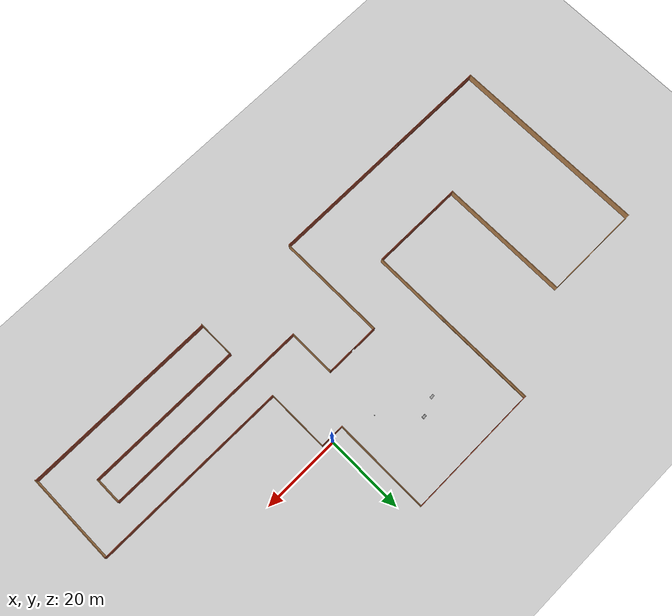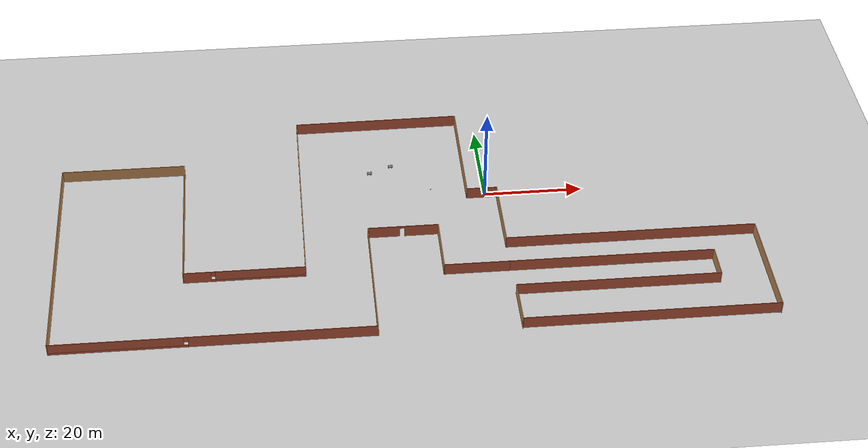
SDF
<sdf version="1.6">
 <world name="default">
  <plugin name="welcome" filename="libwelcome.so"/>
  <light name="sun" type="directional">
   <pose>0 0 10 0 -0 0</pose>
   <diffuse>0.8 0.8 0.8 1</diffuse>
   <specular>0.2 0.2 0.2 1</specular>
   <attenuation>
    <range>1000</range>
    <constant>0.9</constant>
    <linear>0.01</linear>
    <quadratic>0.001</quadratic>
   </attenuation>
   <direction>-0.5 0.1 -0.9</direction>
  </light>
  <model name="ground_plane">
   <static>1</static>
   <link name="link">
    <collision name="collision">
     <geometry><plane><normal>0 0 1</normal><size>100 100</size></plane></geometry>
     <surface>
      <contact><collide_bitmask>65535</collide_bitmask></contact>
      <friction><ode><mu>100</mu><mu2>50</mu2></ode></friction>
     </surface>
    </collision>
    <visual name="visual">
     <cast_shadows>0</cast_shadows>
     <geometry><plane><normal>0 0 1</normal><size>100 100</size></plane></geometry>
     <material>
      <script><uri>file://media/materials/scripts/gazebo.material</uri><name>Gazebo/Grey</name></script>
     </material>
    </visual>
   </link>
  </model>
  <gravity>0 0 -9.8</gravity>
  <magnetic_field>6e-06 2.3e-05 -4.2e-05</magnetic_field>
  <atmosphere type="adiabatic"/>
  <physics name="default_physics" default="0" type="ode">
   <max_step_size>0.001</max_step_size>
   <real_time_factor>1</real_time_factor>
   <real_time_update_rate>1000</real_time_update_rate>
  </physics>
  <scene><ambient>0.4 0.4 0.4 1</ambient><background>0.7 0.7 0.7 1</background><shadows>1</shadows></scene>
  <spherical_coordinates>
   <surface_model>EARTH_WGS84</surface_model>
   <latitude_deg>0</latitude_deg>
   <longitude_deg>0</longitude_deg>
   <elevation>0</elevation>
   <heading_deg>0</heading_deg>
  </spherical_coordinates>
  <model name="singlefloor">
   <pose>-17.175 -8.20607 0 0 -0 0</pose>
   <link name="Wall_0">
    <collision name="Wall_0_Collision">
     <geometry><box><size>6.25 0.15 2.5</size></box></geometry>
     <pose>0 0 1.25 0 -0 0</pose>
    </collision>
    <visual name="Wall_0_Visual">
     <pose>0 0 1.25 0 -0 0</pose>
     <geometry><box><size>6.25 0.15 2.5</size></box></geometry>
     <material>
      <script><uri>file://media/materials/scripts/gazebo.material</uri><name>Gazebo/Bricks</name></script>
      <ambient>0.921569 0.807843 0.615686 1</ambient>
     </material>
     <meta><layer>0</layer></meta>
    </visual>
    <pose>16.3992 7.27037 0 0 -0 0</pose>
   </link>
   <link name="Wall_1">
    <collision name="Wall_1_Collision">
     <geometry><box><size>16 0.15 2.5</size></box></geometry>
     <pose>0 0 1.25 0 -0 0</pose>
    </collision>
    <visual name="Wall_1_Visual">
     <pose>0 0 1.25 0 -0 0</pose>
     <geometry><box><size>16 0.15 2.5</size></box></geometry>
     <material>
      <script><uri>file://media/materials/scripts/gazebo.material</uri><name>Gazebo/Wood</name></script>
      <ambient>0.921569 0.807843 0.615686 1</ambient>
     </material>
     <meta><layer>0</layer></meta>
    </visual>
    <pose>19.4621 -0.658928 0 0 0 -1.56917</pose>
   </link>
   <link name="Wall_10">
    <collision name="Wall_10_Collision">
     <geometry><box><size>12.25 0.15 2.5</size></box></geometry>
     <pose>0 0 1.25 0 -0 0</pose>
    </collision>
    <visual name="Wall_10_Visual">
     <pose>0 0 1.25 0 -0 0</pose>
     <geometry><box><size>12.25 0.15 2.5</size></box></geometry>
     <material>
      <script><uri>file://media/materials/scripts/gazebo.material</uri><name>Gazebo/Wood</name></script>
      <ambient>0.921569 0.807843 0.615686 1</ambient>
     </material>
     <meta><layer>0</layer></meta>
    </visual>
    <pose>6.375 -9.43393 0 0 -0 1.5708</pose>
   </link>
   <link name="Wall_11">
    <pose>-0.674999 -3.38393 0 0 -0 3.14159</pose>
    <visual name="Wall_11_Visual_0">
     <pose>-3.67697 0 1.25 0 -0 0</pose>
     <geometry><box><size>6.89605 0.15 2.5</size></box></geometry>
     <material>
      <script><uri>file://media/materials/scripts/gazebo.material</uri><name>Gazebo/Bricks</name></script>
      <ambient>0.921569 0.807843 0.615686 1</ambient>
     </material>
     <meta><layer>0</layer></meta>
    </visual>
    <collision name="Wall_11_Collision_0">
     <geometry><box><size>6.89605 0.15 2.5</size></box></geometry>
     <pose>-3.67697 0 1.25 0 -0 0</pose>
    </collision>
    <visual name="Wall_11_Visual_1">
     <pose>3.89803 0 1.25 0 -0 0</pose>
     <geometry><box><size>6.45395 0.15 2.5</size></box></geometry>
     <material>
      <script><uri>file://media/materials/scripts/gazebo.material</uri><name>Gazebo/Bricks</name></script>
      <ambient>0.921569 0.807843 0.615686 1</ambient>
     </material>
     <meta><layer>0</layer></meta>
    </visual>
    <collision name="Wall_11_Collision_1">
     <geometry><box><size>6.45395 0.15 2.5</size></box></geometry>
     <pose>3.89803 0 1.25 0 -0 0</pose>
    </collision>
    <visual name="Wall_11_Visual_2">
     <pose>0.221052 0 2.25 0 -0 0</pose>
     <geometry><box><size>0.9 0.15 0.5</size></box></geometry>
     <material>
      <script><uri>file://media/materials/scripts/gazebo.material</uri><name>Gazebo/Bricks</name></script>
      <ambient>0.921569 0.807843 0.615686 1</ambient>
     </material>
     <meta><layer>0</layer></meta>
    </visual>
    <collision name="Wall_11_Collision_2">
     <geometry><box><size>0.9 0.15 0.5</size></box></geometry>
     <pose>0.221052 0 2.25 0 -0 0</pose>
    </collision>
   </link>
   <link name="Wall_12">
    <collision name="Wall_12_Collision">
     <geometry><box><size>28.25 0.15 2.5</size></box></geometry>
     <pose>0 0 1.25 0 -0 0</pose>
    </collision>
    <visual name="Wall_12_Visual">
     <pose>0 0 1.25 0 -0 0</pose>
     <geometry><box><size>28.25 0.15 2.5</size></box></geometry>
     <material>
      <script><uri>file://media/materials/scripts/gazebo.material</uri><name>Gazebo/Wood</name></script>
      <ambient>0.921569 0.807843 0.615686 1</ambient>
     </material>
     <meta><layer>0</layer></meta>
    </visual>
    <pose>-7.725 -17.4339 0 0 0 -1.5708</pose>
   </link>
   <link name="Wall_13">
    <pose>-38.65 -31.4839 0 0 -0 3.14159</pose>
    <visual name="Wall_13_Visual_0">
     <pose>-13.1366 0 1.25 0 -0 0</pose>
     <geometry><box><size>35.7269 0.15 2.5</size></box></geometry>
     <material>
      <script><uri>file://media/materials/scripts/gazebo.material</uri><name>Gazebo/Bricks</name></script>
      <ambient>0.921569 0.807843 0.615686 1</ambient>
     </material>
     <meta><layer>0</layer></meta>
    </visual>
    <collision name="Wall_13_Collision_0">
     <geometry><box><size>35.7269 0.15 2.5</size></box></geometry>
     <pose>-13.1366 0 1.25 0 -0 0</pose>
    </collision>
    <visual name="Wall_13_Visual_1">
     <pose>17.8634 0 0.25 0 -0 0</pose>
     <geometry><box><size>26.2731 0.15 0.5</size></box></geometry>
     <material>
      <script><uri>file://media/materials/scripts/gazebo.material</uri><name>Gazebo/Bricks</name></script>
      <ambient>0.921569 0.807843 0.615686 1</ambient>
     </material>
     <meta><layer>0</layer></meta>
    </visual>
    <collision name="Wall_13_Collision_1">
     <geometry><box><size>26.2731 0.15 0.5</size></box></geometry>
     <pose>17.8634 0 0.25 0 -0 0</pose>
    </collision>
    <visual name="Wall_13_Visual_2">
     <pose>18.2634 0 1.5 0 -0 0</pose>
     <geometry><box><size>25.4731 0.15 2</size></box></geometry>
     <material>
      <script><uri>file://media/materials/scripts/gazebo.material</uri><name>Gazebo/Bricks</name></script>
      <ambient>0.921569 0.807843 0.615686 1</ambient>
     </material>
     <meta><layer>0</layer></meta>
    </visual>
    <collision name="Wall_13_Collision_2">
     <geometry><box><size>25.4731 0.15 2</size></box></geometry>
     <pose>18.2634 0 1.5 0 -0 0</pose>
    </collision>
    <visual name="Wall_13_Visual_3">
     <pose>5.12688 0 1.9 0 -0 0</pose>
     <geometry><box><size>0.8 0.15 1.2</size></box></geometry>
     <material>
      <script><uri>file://media/materials/scripts/gazebo.material</uri><name>Gazebo/Bricks</name></script>
      <ambient>0.921569 0.807843 0.615686 1</ambient>
     </material>
     <meta><layer>0</layer></meta>
    </visual>
    <collision name="Wall_13_Collision_3">
     <geometry><box><size>0.8 0.15 1.2</size></box></geometry>
     <pose>5.12688 0 1.9 0 -0 0</pose>
    </collision>
   </link>
   <link name="Wall_14">
    <collision name="Wall_14_Collision">
     <geometry><box><size>51.25 0.15 2.5</size></box></geometry>
     <pose>0 0 1.25 0 -0 0</pose>
    </collision>
    <visual name="Wall_14_Visual">
     <pose>0 0 1.25 0 -0 0</pose>
     <geometry><box><size>51.25 0.15 2.5</size></box></geometry>
     <material>
      <script><uri>file://media/materials/scripts/gazebo.material</uri><name>Gazebo/Wood</name></script>
      <ambient>0.921569 0.807843 0.615686 1</ambient>
     </material>
     <meta><layer>0</layer></meta>
    </visual>
    <pose>-69.575 -5.93393 0 0 -0 1.5708</pose>
   </link>
   <link name="Wall_15">
    <collision name="Wall_15_Collision">
     <geometry><box><size>25.25 0.15 2.5</size></box></geometry>
     <pose>0 0 1.25 0 -0 0</pose>
    </collision>
    <visual name="Wall_15_Visual">
     <pose>0 0 1.25 0 -0 0</pose>
     <geometry><box><size>25.25 0.15 2.5</size></box></geometry>
     <material>
      <script><uri>file://media/materials/scripts/gazebo.material</uri><name>Gazebo/Wood</name></script>
      <ambient>0.921569 0.807843 0.615686 1</ambient>
     </material>
     <meta><layer>0</layer></meta>
    </visual>
    <pose>-57.025 19.6161 0 0 -0 0</pose>
   </link>
   <link name="Wall_16">
    <collision name="Wall_16_Collision">
     <geometry><box><size>33.5 0.15 2.5</size></box></geometry>
     <pose>0 0 1.25 0 -0 0</pose>
    </collision>
    <visual name="Wall_16_Visual">
     <pose>0 0 1.25 0 -0 0</pose>
     <geometry><box><size>33.5 0.15 2.5</size></box></geometry>
     <material>
      <script><uri>file://media/materials/scripts/gazebo.material</uri><name>Gazebo/Wood</name></script>
      <ambient>0.921569 0.807843 0.615686 1</ambient>
     </material>
     <meta><layer>0</layer></meta>
    </visual>
    <pose>-44.475 2.94107 0 0 0 -1.5708</pose>
   </link>
   <link name="Wall_17">
    <pose>-32.55 -13.7339 0 0 -0 0</pose>
    <visual name="Wall_17_Visual_0">
     <pose>-9.24015 0 1.25 0 -0 0</pose>
     <geometry><box><size>5.5197 0.15 2.5</size></box></geometry>
     <material>
      <script><uri>file://media/materials/scripts/gazebo.material</uri><name>Gazebo/Bricks</name></script>
      <ambient>0.921569 0.807843 0.615686 1</ambient>
     </material>
     <meta><layer>0</layer></meta>
    </visual>
    <collision name="Wall_17_Collision_0">
     <geometry><box><size>5.5197 0.15 2.5</size></box></geometry>
     <pose>-9.24015 0 1.25 0 -0 0</pose>
    </collision>
    <visual name="Wall_17_Visual_1">
     <pose>2.75985 0 0.25 0 -0 0</pose>
     <geometry><box><size>18.4803 0.15 0.5</size></box></geometry>
     <material>
      <script><uri>file://media/materials/scripts/gazebo.material</uri><name>Gazebo/Bricks</name></script>
      <ambient>0.921569 0.807843 0.615686 1</ambient>
     </material>
     <meta><layer>0</layer></meta>
    </visual>
    <collision name="Wall_17_Collision_1">
     <geometry><box><size>18.4803 0.15 0.5</size></box></geometry>
     <pose>2.75985 0 0.25 0 -0 0</pose>
    </collision>
    <visual name="Wall_17_Visual_2">
     <pose>3.15985 0 1.5 0 -0 0</pose>
     <geometry><box><size>17.6803 0.15 2</size></box></geometry>
     <material>
      <script><uri>file://media/materials/scripts/gazebo.material</uri><name>Gazebo/Bricks</name></script>
      <ambient>0.921569 0.807843 0.615686 1</ambient>
     </material>
     <meta><layer>0</layer></meta>
    </visual>
    <collision name="Wall_17_Collision_2">
     <geometry><box><size>17.6803 0.15 2</size></box></geometry>
     <pose>3.15985 0 1.5 0 -0 0</pose>
    </collision>
    <visual name="Wall_17_Visual_3">
     <pose>-6.0803 0 1.9 0 -0 0</pose>
     <geometry><box><size>0.8 0.15 1.2</size></box></geometry>
     <material>
      <script><uri>file://media/materials/scripts/gazebo.material</uri><name>Gazebo/Bricks</name></script>
      <ambient>0.921569 0.807843 0.615686 1</ambient>
     </material>
     <meta><layer>0</layer></meta>
    </visual>
    <collision name="Wall_17_Collision_3">
     <geometry><box><size>0.8 0.15 1.2</size></box></geometry>
     <pose>-6.0803 0 1.9 0 -0 0</pose>
    </collision>
   </link>
   <link name="Wall_18">
    <pose>-20.625 8.94107 0 0 -0 1.5708</pose>
    <visual name="Wall_18_Visual_0">
     <pose>-12.8056 0 1.25 0 -0 0</pose>
     <geometry><box><size>19.8888 0.15 2.5</size></box></geometry>
     <material>
      <script><uri>file://media/materials/scripts/gazebo.material</uri><name>Gazebo/Wood</name></script>
      <ambient>0.921569 0.807843 0.615686 1</ambient>
     </material>
     <meta><layer>0</layer></meta>
    </visual>
    <collision name="Wall_18_Collision_0">
     <geometry><box><size>19.8888 0.15 2.5</size></box></geometry>
     <pose>-12.8056 0 1.25 0 -0 0</pose>
    </collision>
    <visual name="Wall_18_Visual_1">
     <pose>9.94438 0 0.25 0 -0 0</pose>
     <geometry><box><size>25.6112 0.15 0.5</size></box></geometry>
     <material>
      <script><uri>file://media/materials/scripts/gazebo.material</uri><name>Gazebo/Wood</name></script>
      <ambient>0.921569 0.807843 0.615686 1</ambient>
     </material>
     <meta><layer>0</layer></meta>
    </visual>
    <collision name="Wall_18_Collision_1">
     <geometry><box><size>25.6112 0.15 0.5</size></box></geometry>
     <pose>9.94438 0 0.25 0 -0 0</pose>
    </collision>
    <visual name="Wall_18_Visual_2">
     <pose>10.3444 0 1.5 0 -0 0</pose>
     <geometry><box><size>24.8112 0.15 2</size></box></geometry>
     <material>
      <script><uri>file://media/materials/scripts/gazebo.material</uri><name>Gazebo/Wood</name></script>
      <ambient>0.921569 0.807843 0.615686 1</ambient>
     </material>
     <meta><layer>0</layer></meta>
    </visual>
    <collision name="Wall_18_Collision_2">
     <geometry><box><size>24.8112 0.15 2</size></box></geometry>
     <pose>10.3444 0 1.5 0 -0 0</pose>
    </collision>
    <visual name="Wall_18_Visual_3">
     <pose>-2.46123 0 1.9 0 -0 0</pose>
     <geometry><box><size>0.8 0.15 1.2</size></box></geometry>
     <material>
      <script><uri>file://media/materials/scripts/gazebo.material</uri><name>Gazebo/Wood</name></script>
      <ambient>0.921569 0.807843 0.615686 1</ambient>
     </material>
     <meta><layer>0</layer></meta>
    </visual>
    <collision name="Wall_18_Collision_3">
     <geometry><box><size>0.8 0.15 1.2</size></box></geometry>
     <pose>-2.46123 0 1.9 0 -0 0</pose>
    </collision>
   </link>
   <link name="Wall_19">
    <collision name="Wall_19_Collision">
     <geometry><box><size>34.0968 0.15 2.5</size></box></geometry>
     <pose>0 0 1.25 0 -0 0</pose>
    </collision>
    <visual name="Wall_19_Visual">
     <pose>0 0 1.25 0 -0 0</pose>
     <geometry><box><size>34.0968 0.15 2.5</size></box></geometry>
     <material>
      <script><uri>file://media/materials/scripts/gazebo.material</uri><name>Gazebo/Bricks</name></script>
      <ambient>0.921569 0.807843 0.615686 1</ambient>
     </material>
     <meta><layer>0</layer></meta>
    </visual>
    <pose>-3.65205 31.7412 0 0 -0 0.007373</pose>
   </link>
   <link name="Wall_2">
    <collision name="Wall_2_Collision">
     <geometry><box><size>50.25 0.15 2.5</size></box></geometry>
     <pose>0 0 1.25 0 -0 0</pose>
    </collision>
    <visual name="Wall_2_Visual">
     <pose>0 0 1.25 0 -0 0</pose>
     <geometry><box><size>50.25 0.15 2.5</size></box></geometry>
     <material>
      <script><uri>file://media/materials/scripts/gazebo.material</uri><name>Gazebo/Bricks</name></script>
      <ambient>0.921569 0.807843 0.615686 1</ambient>
     </material>
     <meta><layer>0</layer></meta>
    </visual>
    <pose>44.525 -8.58393 0 0 -0 0</pose>
   </link>
   <link name="Wall_20">
    <collision name="Wall_20_Collision">
     <geometry><box><size>24.75 0.15 2.5</size></box></geometry>
     <pose>0 0 1.25 0 -0 0</pose>
    </collision>
    <visual name="Wall_20_Visual">
     <pose>0 0 1.25 0 -0 0</pose>
     <geometry><box><size>24.75 0.15 2.5</size></box></geometry>
     <material>
      <script><uri>file://media/materials/scripts/gazebo.material</uri><name>Gazebo/Wood</name></script>
      <ambient>0.921569 0.807843 0.615686 1</ambient>
     </material>
     <meta><layer>0</layer></meta>
    </visual>
    <pose>13.3295 19.5664 0 0 0 -1.5708</pose>
   </link>
   <link name="Wall_3">
    <collision name="Wall_3_Collision">
     <geometry><box><size>23.433 0.15 2.5</size></box></geometry>
     <pose>0 0 1.25 0 -0 0</pose>
    </collision>
    <visual name="Wall_3_Visual">
     <pose>0 0 1.25 0 -0 0</pose>
     <geometry><box><size>23.433 0.15 2.5</size></box></geometry>
     <material>
      <script><uri>file://media/materials/scripts/gazebo.material</uri><name>Gazebo/Wood</name></script>
      <ambient>0.921569 0.807843 0.615686 1</ambient>
     </material>
     <meta><layer>0</layer></meta>
    </visual>
    <pose>69.575 -20.2254 0 0 0 -1.5708</pose>
   </link>
   <link name="Wall_4">
    <collision name="Wall_4_Collision">
     <geometry><box><size>50 0.15 2.5</size></box></geometry>
     <pose>0 0 1.25 0 -0 0</pose>
    </collision>
    <visual name="Wall_4_Visual">
     <pose>0 0 1.25 0 -0 0</pose>
     <geometry><box><size>50 0.15 2.5</size></box></geometry>
     <material>
      <script><uri>file://media/materials/scripts/gazebo.material</uri><name>Gazebo/Bricks</name></script>
      <ambient>0.921569 0.807843 0.615686 1</ambient>
     </material>
     <meta><layer>0</layer></meta>
    </visual>
    <pose>44.65 -31.6798 0 0 -0 3.14159</pose>
   </link>
   <link name="Wall_5">
    <collision name="Wall_5_Collision">
     <geometry><box><size>9.68298 0.15 2.5</size></box></geometry>
     <pose>0 0 1.25 0 -0 0</pose>
    </collision>
    <visual name="Wall_5_Visual">
     <pose>0 0 1.25 0 -0 0</pose>
     <geometry><box><size>9.68298 0.15 2.5</size></box></geometry>
     <material>
      <script><uri>file://media/materials/scripts/gazebo.material</uri><name>Gazebo/Wood</name></script>
      <ambient>0.921569 0.807843 0.615686 1</ambient>
     </material>
     <meta><layer>0</layer></meta>
    </visual>
    <pose>19.725 -27.1004 0 0 -0 1.5708</pose>
   </link>
   <link name="Wall_6">
    <collision name="Wall_6_Collision">
     <geometry><box><size>40.25 0.15 2.5</size></box></geometry>
     <pose>0 0 1.25 0 -0 0</pose>
    </collision>
    <visual name="Wall_6_Visual">
     <pose>0 0 1.25 0 -0 0</pose>
     <geometry><box><size>40.25 0.15 2.5</size></box></geometry>
     <material>
      <script><uri>file://media/materials/scripts/gazebo.material</uri><name>Gazebo/Bricks</name></script>
      <ambient>0.921569 0.807843 0.615686 1</ambient>
     </material>
     <meta><layer>0</layer></meta>
    </visual>
    <pose>39.775 -22.3339 0 0 -0 0</pose>
   </link>
   <link name="Wall_7">
    <collision name="Wall_7_Collision">
     <geometry><box><size>7 0.15 2.5</size></box></geometry>
     <pose>0 0 1.25 0 -0 0</pose>
    </collision>
    <visual name="Wall_7_Visual">
     <pose>0 0 1.25 0 -0 0</pose>
     <geometry><box><size>7 0.15 2.5</size></box></geometry>
     <material>
      <script><uri>file://media/materials/scripts/gazebo.material</uri><name>Gazebo/Wood</name></script>
      <ambient>0.921569 0.807843 0.615686 1</ambient>
     </material>
     <meta><layer>0</layer></meta>
    </visual>
    <pose>59.825 -18.9089 0 0 -0 1.5708</pose>
   </link>
   <link name="Wall_8">
    <collision name="Wall_8_Collision">
     <geometry><box><size>40.75 0.15 2.5</size></box></geometry>
     <pose>0 0 1.25 0 -0 0</pose>
    </collision>
    <visual name="Wall_8_Visual">
     <pose>0 0 1.25 0 -0 0</pose>
     <geometry><box><size>40.75 0.15 2.5</size></box></geometry>
     <material>
      <script><uri>file://media/materials/scripts/gazebo.material</uri><name>Gazebo/Bricks</name></script>
      <ambient>0.921569 0.807843 0.615686 1</ambient>
     </material>
     <meta><layer>0</layer></meta>
    </visual>
    <pose>39.525 -15.4839 0 0 -0 3.14159</pose>
   </link>
   <link name="Wall_9">
    <collision name="Wall_9_Collision">
     <geometry><box><size>13 0.15 2.5</size></box></geometry>
     <pose>0 0 1.25 0 -0 0</pose>
    </collision>
    <visual name="Wall_9_Visual">
     <pose>0 0 1.25 0 -0 0</pose>
     <geometry><box><size>13 0.15 2.5</size></box></geometry>
     <material>
      <script><uri>file://media/materials/scripts/gazebo.material</uri><name>Gazebo/Bricks</name></script>
      <ambient>0.921569 0.807843 0.615686 1</ambient>
     </material>
     <meta><layer>0</layer></meta>
    </visual>
    <pose>12.8 -15.4839 0 0 -0 3.14159</pose>
   </link>
   <static>1</static>
  </model>
  <model name="robot">
   <link name="link_0">
    <pose>-1e-06 0.020008 0 0 -0 0</pose>
    <inertial>
     <mass>1</mass>
     <inertia>
      <ixx>0.166667</ixx>
      <ixy>0</ixy>
      <ixz>0</ixz>
      <iyy>0.166667</iyy>
      <iyz>0</iyz>
      <izz>0.166667</izz>
     </inertia>
    </inertial>
    <visual name="visual">
     <geometry><box><size>1 0.5 0.2</size></box></geometry>
     <material>
      <lighting>1</lighting>
      <script><uri>file://media/materials/scripts/gazebo.material</uri><name>Gazebo/Grey</name></script>
      <shader type="pixel"><normal_map>__default__</normal_map></shader>
      <ambient>0.3 0.3 0.3 1</ambient>
      <diffuse>0.7 0.7 0.7 1</diffuse>
      <specular>0.01 0.01 0.01 1</specular>
      <emissive>0 0 0 1</emissive>
     </material>
    </visual>
    <collision name="collision">
     <geometry><box><size>1 0.5 0.2</size></box></geometry>
     <surface>
      <friction>
       <ode><mu>1</mu><mu2>1</mu2><fdir1>0 0 0</fdir1><slip1>0</slip1><slip2>0</slip2></ode>
       <torsional>
        <coefficient>1</coefficient>
        <patch_radius>0</patch_radius>
        <surface_radius>0</surface_radius>
        <use_patch_radius>1</use_patch_radius>
        <ode><slip>0</slip></ode>
       </torsional>
      </friction>
      <bounce><restitution_coefficient>0</restitution_coefficient><threshold>1e+06</threshold></bounce>
      <contact>
       <collide_without_contact>0</collide_without_contact>
       <collide_without_contact_bitmask>1</collide_without_contact_bitmask>
       <collide_bitmask>1</collide_bitmask>
       <ode>
        <soft_cfm>0</soft_cfm>
        <soft_erp>0.2</soft_erp>
        <kp>1e+13</kp>
        <kd>1</kd>
        <max_vel>0.01</max_vel>
        <min_depth>0</min_depth>
       </ode>
       <bullet>
        <split_impulse>1</split_impulse>
        <split_impulse_penetration_threshold>-0.01</split_impulse_penetration_threshold>
        <soft_cfm>0</soft_cfm>
        <soft_erp>0.2</soft_erp>
        <kp>1e+13</kp>
        <kd>1</kd>
       </bullet>
      </contact>
     </surface>
    </collision>
   </link>
   <link name="link_1">
    <pose>-0.3 -0.280011 0 1.5707 -0 0</pose>
    <inertial>
     <mass>1</mass>
     <inertia><ixx>0.145833</ixx><ixy>0</ixy><ixz>0</ixz><iyy>0.145833</iyy><iyz>0</iyz><izz>0.125</izz></inertia>
    </inertial>
    <visual name="visual">
     <geometry><cylinder><radius>0.2</radius><length>0.1</length></cylinder></geometry>
     <material>
      <lighting>1</lighting>
      <script><uri>file://media/materials/scripts/gazebo.material</uri><name>Gazebo/Grey</name></script>
      <shader type="pixel"><normal_map>__default__</normal_map></shader>
      <ambient>0.3 0.3 0.3 1</ambient>
      <diffuse>0.7 0.7 0.7 1</diffuse>
      <specular>0.01 0.01 0.01 1</specular>
      <emissive>0 0 0 1</emissive>
     </material>
    </visual>
    <collision name="collision">
     <geometry><cylinder><radius>0.2</radius><length>0.1</length></cylinder></geometry>
     <surface>
      <friction>
       <ode><mu>1</mu><mu2>1</mu2><fdir1>0 0 0</fdir1><slip1>0</slip1><slip2>0</slip2></ode>
       <torsional>
        <coefficient>1</coefficient>
        <patch_radius>0</patch_radius>
        <surface_radius>0</surface_radius>
        <use_patch_radius>1</use_patch_radius>
        <ode><slip>0</slip></ode>
       </torsional>
      </friction>
      <bounce><restitution_coefficient>0</restitution_coefficient><threshold>1e+06</threshold></bounce>
      <contact>
       <collide_without_contact>0</collide_without_contact>
       <collide_without_contact_bitmask>1</collide_without_contact_bitmask>
       <collide_bitmask>1</collide_bitmask>
       <ode>
        <soft_cfm>0</soft_cfm>
        <soft_erp>0.2</soft_erp>
        <kp>1e+13</kp>
        <kd>1</kd>
        <max_vel>0.01</max_vel>
        <min_depth>0</min_depth>
       </ode>
       <bullet>
        <split_impulse>1</split_impulse>
        <split_impulse_penetration_threshold>-0.01</split_impulse_penetration_threshold>
        <soft_cfm>0</soft_cfm>
        <soft_erp>0.2</soft_erp>
        <kp>1e+13</kp>
        <kd>1</kd>
       </bullet>
      </contact>
     </surface>
    </collision>
   </link>
   <link name="link_1_clone">
    <pose>-0.3 0.219989 0 1.5707 -0 0</pose>
    <inertial>
     <mass>1</mass>
     <inertia><ixx>0.145833</ixx><ixy>0</ixy><ixz>0</ixz><iyy>0.145833</iyy><iyz>0</iyz><izz>0.125</izz></inertia>
    </inertial>
    <visual name="visual">
     <geometry><cylinder><radius>0.2</radius><length>0.1</length></cylinder></geometry>
     <material>
      <lighting>1</lighting>
      <script><uri>file://media/materials/scripts/gazebo.material</uri><name>Gazebo/Grey</name></script>
      <shader type="pixel"><normal_map>__default__</normal_map></shader>
      <ambient>0.3 0.3 0.3 1</ambient>
      <diffuse>0.7 0.7 0.7 1</diffuse>
      <specular>0.01 0.01 0.01 1</specular>
      <emissive>0 0 0 1</emissive>
     </material>
    </visual>
    <collision name="collision">
     <geometry><cylinder><radius>0.2</radius><length>0.1</length></cylinder></geometry>
     <surface>
      <friction>
       <ode><mu>1</mu><mu2>1</mu2><fdir1>0 0 0</fdir1><slip1>0</slip1><slip2>0</slip2></ode>
       <torsional>
        <coefficient>1</coefficient>
        <patch_radius>0</patch_radius>
        <surface_radius>0</surface_radius>
        <use_patch_radius>1</use_patch_radius>
        <ode><slip>0</slip></ode>
       </torsional>
      </friction>
      <bounce><restitution_coefficient>0</restitution_coefficient><threshold>1e+06</threshold></bounce>
      <contact>
       <collide_without_contact>0</collide_without_contact>
       <collide_without_contact_bitmask>1</collide_without_contact_bitmask>
       <collide_bitmask>1</collide_bitmask>
       <ode>
        <soft_cfm>0</soft_cfm>
        <soft_erp>0.2</soft_erp>
        <kp>1e+13</kp>
        <kd>1</kd>
        <max_vel>0.01</max_vel>
        <min_depth>0</min_depth>
       </ode>
       <bullet>
        <split_impulse>1</split_impulse>
        <split_impulse_penetration_threshold>-0.01</split_impulse_penetration_threshold>
        <soft_cfm>0</soft_cfm>
        <soft_erp>0.2</soft_erp>
        <kp>1e+13</kp>
        <kd>1</kd>
       </bullet>
      </contact>
     </surface>
    </collision>
   </link>
   <link name="link_1_clone_0">
    <pose>0.299998 -0.280011 0 1.5707 -0 0</pose>
    <inertial>
     <mass>1</mass>
     <inertia><ixx>0.145833</ixx><ixy>0</ixy><ixz>0</ixz><iyy>0.145833</iyy><iyz>0</iyz><izz>0.125</izz></inertia>
    </inertial>
    <visual name="visual">
     <geometry><cylinder><radius>0.2</radius><length>0.1</length></cylinder></geometry>
     <material>
      <lighting>1</lighting>
      <script><uri>file://media/materials/scripts/gazebo.material</uri><name>Gazebo/Grey</name></script>
      <shader type="pixel"><normal_map>__default__</normal_map></shader>
      <ambient>0.3 0.3 0.3 1</ambient>
      <diffuse>0.7 0.7 0.7 1</diffuse>
      <specular>0.01 0.01 0.01 1</specular>
      <emissive>0 0 0 1</emissive>
     </material>
    </visual>
    <collision name="collision">
     <geometry><cylinder><radius>0.2</radius><length>0.1</length></cylinder></geometry>
     <surface>
      <friction>
       <ode><mu>1</mu><mu2>1</mu2><fdir1>0 0 0</fdir1><slip1>0</slip1><slip2>0</slip2></ode>
       <torsional>
        <coefficient>1</coefficient>
        <patch_radius>0</patch_radius>
        <surface_radius>0</surface_radius>
        <use_patch_radius>1</use_patch_radius>
        <ode><slip>0</slip></ode>
       </torsional>
      </friction>
      <bounce><restitution_coefficient>0</restitution_coefficient><threshold>1e+06</threshold></bounce>
      <contact>
       <collide_without_contact>0</collide_without_contact>
       <collide_without_contact_bitmask>1</collide_without_contact_bitmask>
       <collide_bitmask>1</collide_bitmask>
       <ode>
        <soft_cfm>0</soft_cfm>
        <soft_erp>0.2</soft_erp>
        <kp>1e+13</kp>
        <kd>1</kd>
        <max_vel>0.01</max_vel>
        <min_depth>0</min_depth>
       </ode>
       <bullet>
        <split_impulse>1</split_impulse>
        <split_impulse_penetration_threshold>-0.01</split_impulse_penetration_threshold>
        <soft_cfm>0</soft_cfm>
        <soft_erp>0.2</soft_erp>
        <kp>1e+13</kp>
        <kd>1</kd>
       </bullet>
      </contact>
     </surface>
    </collision>
   </link>
   <link name="link_1_clone_1">
    <pose>0.299998 0.320027 0 1.5707 -0 0</pose>
    <inertial>
     <mass>1</mass>
     <inertia><ixx>0.145833</ixx><ixy>0</ixy><ixz>0</ixz><iyy>0.145833</iyy><iyz>0</iyz><izz>0.125</izz></inertia>
    </inertial>
    <visual name="visual">
     <geometry><cylinder><radius>0.2</radius><length>0.1</length></cylinder></geometry>
     <material>
      <lighting>1</lighting>
      <script><uri>file://media/materials/scripts/gazebo.material</uri><name>Gazebo/Grey</name></script>
      <shader type="pixel"><normal_map>__default__</normal_map></shader>
      <ambient>0.3 0.3 0.3 1</ambient>
      <diffuse>0.7 0.7 0.7 1</diffuse>
      <specular>0.01 0.01 0.01 1</specular>
      <emissive>0 0 0 1</emissive>
     </material>
    </visual>
    <collision name="collision">
     <geometry><cylinder><radius>0.2</radius><length>0.1</length></cylinder></geometry>
     <surface>
      <friction>
       <ode><mu>1</mu><mu2>1</mu2><fdir1>0 0 0</fdir1><slip1>0</slip1><slip2>0</slip2></ode>
       <torsional>
        <coefficient>1</coefficient>
        <patch_radius>0</patch_radius>
        <surface_radius>0</surface_radius>
        <use_patch_radius>1</use_patch_radius>
        <ode><slip>0</slip></ode>
       </torsional>
      </friction>
      <bounce><restitution_coefficient>0</restitution_coefficient><threshold>1e+06</threshold></bounce>
      <contact>
       <collide_without_contact>0</collide_without_contact>
       <collide_without_contact_bitmask>1</collide_without_contact_bitmask>
       <collide_bitmask>1</collide_bitmask>
       <ode>
        <soft_cfm>0</soft_cfm>
        <soft_erp>0.2</soft_erp>
        <kp>1e+13</kp>
        <kd>1</kd>
        <max_vel>0.01</max_vel>
        <min_depth>0</min_depth>
       </ode>
       <bullet>
        <split_impulse>1</split_impulse>
        <split_impulse_penetration_threshold>-0.01</split_impulse_penetration_threshold>
        <soft_cfm>0</soft_cfm>
        <soft_erp>0.2</soft_erp>
        <kp>1e+13</kp>
        <kd>1</kd>
       </bullet>
      </contact>
     </surface>
    </collision>
   </link>
   <joint name="link_0_JOINT_0" type="revolute">
    <parent>link_0</parent>
    <child>link_1</child>
    <axis>
     <xyz>0 0 1</xyz>
     <use_parent_model_frame>0</use_parent_model_frame>
     <limit>
      <lower>-1.79769e+308</lower>
      <upper>1.79769e+308</upper>
      <effort>-1</effort>
      <velocity>-1</velocity>
     </limit>
     <dynamics>
      <spring_reference>0</spring_reference>
      <spring_stiffness>0</spring_stiffness>
      <damping>0</damping>
     </dynamics>
    </axis>
    <physics>
     <ode><limit><cfm>0</cfm><erp>0.2</erp></limit><suspension><cfm>0</cfm><erp>0.2</erp></suspension></ode>
    </physics>
   </joint>
   <joint name="link_0_JOINT_1" type="revolute">
    <parent>link_0</parent>
    <child>link_1_clone</child>
    <axis>
     <xyz>0 0 1</xyz>
     <use_parent_model_frame>0</use_parent_model_frame>
     <limit>
      <lower>-1.79769e+308</lower>
      <upper>1.79769e+308</upper>
      <effort>-1</effort>
      <velocity>-1</velocity>
     </limit>
     <dynamics>
      <spring_reference>0</spring_reference>
      <spring_stiffness>0</spring_stiffness>
      <damping>0</damping>
     </dynamics>
    </axis>
    <physics>
     <ode><limit><cfm>0</cfm><erp>0.2</erp></limit><suspension><cfm>0</cfm><erp>0.2</erp></suspension></ode>
    </physics>
   </joint>
   <joint name="link_0_JOINT_2" type="revolute">
    <parent>link_0</parent>
    <child>link_1_clone_0</child>
    <axis>
     <xyz>0 0 1</xyz>
     <use_parent_model_frame>0</use_parent_model_frame>
     <limit>
      <lower>-1.79769e+308</lower>
      <upper>1.79769e+308</upper>
      <effort>-1</effort>
      <velocity>-1</velocity>
     </limit>
     <dynamics>
      <spring_reference>0</spring_reference>
      <spring_stiffness>0</spring_stiffness>
      <damping>0</damping>
     </dynamics>
    </axis>
    <physics>
     <ode><limit><cfm>0</cfm><erp>0.2</erp></limit><suspension><cfm>0</cfm><erp>0.2</erp></suspension></ode>
    </physics>
   </joint>
   <joint name="link_0_JOINT_3" type="revolute">
    <parent>link_0</parent>
    <child>link_1_clone_1</child>
    <axis>
     <xyz>0 0 1</xyz>
     <use_parent_model_frame>0</use_parent_model_frame>
     <limit>
      <lower>-1.79769e+308</lower>
      <upper>1.79769e+308</upper>
      <effort>-1</effort>
      <velocity>-1</velocity>
     </limit>
     <dynamics>
      <spring_reference>0</spring_reference>
      <spring_stiffness>0</spring_stiffness>
      <damping>0</damping>
     </dynamics>
    </axis>
    <physics>
     <ode><limit><cfm>0</cfm><erp>0.2</erp></limit><suspension><cfm>0</cfm><erp>0.2</erp></suspension></ode>
    </physics>
   </joint>
   <static>0</static>
   <pose>-23.2361 8.51942 0.2 -1e-06 1.6e-05 -0.020373</pose>
  </model>
  <model name="robot_clone">
   <link name="link_0">
    <pose>-1e-06 0.020008 0 0 -0 0</pose>
    <inertial>
     <mass>1</mass>
     <inertia>
      <ixx>0.166667</ixx>
      <ixy>0</ixy>
      <ixz>0</ixz>
      <iyy>0.166667</iyy>
      <iyz>0</iyz>
      <izz>0.166667</izz>
     </inertia>
    </inertial>
    <visual name="visual">
     <geometry><box><size>1 0.5 0.2</size></box></geometry>
     <material>
      <lighting>1</lighting>
      <script><uri>file://media/materials/scripts/gazebo.material</uri><name>Gazebo/Grey</name></script>
      <shader type="pixel"><normal_map>__default__</normal_map></shader>
      <ambient>0.3 0.3 0.3 1</ambient>
      <diffuse>0.7 0.7 0.7 1</diffuse>
      <specular>0.01 0.01 0.01 1</specular>
      <emissive>0 0 0 1</emissive>
     </material>
    </visual>
    <collision name="collision">
     <geometry><box><size>1 0.5 0.2</size></box></geometry>
     <surface>
      <friction>
       <ode><mu>1</mu><mu2>1</mu2><fdir1>0 0 0</fdir1><slip1>0</slip1><slip2>0</slip2></ode>
       <torsional>
        <coefficient>1</coefficient>
        <patch_radius>0</patch_radius>
        <surface_radius>0</surface_radius>
        <use_patch_radius>1</use_patch_radius>
        <ode><slip>0</slip></ode>
       </torsional>
      </friction>
      <bounce><restitution_coefficient>0</restitution_coefficient><threshold>1e+06</threshold></bounce>
      <contact>
       <collide_without_contact>0</collide_without_contact>
       <collide_without_contact_bitmask>1</collide_without_contact_bitmask>
       <collide_bitmask>1</collide_bitmask>
       <ode>
        <soft_cfm>0</soft_cfm>
        <soft_erp>0.2</soft_erp>
        <kp>1e+13</kp>
        <kd>1</kd>
        <max_vel>0.01</max_vel>
        <min_depth>0</min_depth>
       </ode>
       <bullet>
        <split_impulse>1</split_impulse>
        <split_impulse_penetration_threshold>-0.01</split_impulse_penetration_threshold>
        <soft_cfm>0</soft_cfm>
        <soft_erp>0.2</soft_erp>
        <kp>1e+13</kp>
        <kd>1</kd>
       </bullet>
      </contact>
     </surface>
    </collision>
   </link>
   <link name="link_1">
    <pose>-0.3 -0.280011 0 1.5707 -0 0</pose>
    <inertial>
     <mass>1</mass>
     <inertia><ixx>0.145833</ixx><ixy>0</ixy><ixz>0</ixz><iyy>0.145833</iyy><iyz>0</iyz><izz>0.125</izz></inertia>
    </inertial>
    <visual name="visual">
     <geometry><cylinder><radius>0.2</radius><length>0.1</length></cylinder></geometry>
     <material>
      <lighting>1</lighting>
      <script><uri>file://media/materials/scripts/gazebo.material</uri><name>Gazebo/Grey</name></script>
      <shader type="pixel"><normal_map>__default__</normal_map></shader>
      <ambient>0.3 0.3 0.3 1</ambient>
      <diffuse>0.7 0.7 0.7 1</diffuse>
      <specular>0.01 0.01 0.01 1</specular>
      <emissive>0 0 0 1</emissive>
     </material>
    </visual>
    <collision name="collision">
     <geometry><cylinder><radius>0.2</radius><length>0.1</length></cylinder></geometry>
     <surface>
      <friction>
       <ode><mu>1</mu><mu2>1</mu2><fdir1>0 0 0</fdir1><slip1>0</slip1><slip2>0</slip2></ode>
       <torsional>
        <coefficient>1</coefficient>
        <patch_radius>0</patch_radius>
        <surface_radius>0</surface_radius>
        <use_patch_radius>1</use_patch_radius>
        <ode><slip>0</slip></ode>
       </torsional>
      </friction>
      <bounce><restitution_coefficient>0</restitution_coefficient><threshold>1e+06</threshold></bounce>
      <contact>
       <collide_without_contact>0</collide_without_contact>
       <collide_without_contact_bitmask>1</collide_without_contact_bitmask>
       <collide_bitmask>1</collide_bitmask>
       <ode>
        <soft_cfm>0</soft_cfm>
        <soft_erp>0.2</soft_erp>
        <kp>1e+13</kp>
        <kd>1</kd>
        <max_vel>0.01</max_vel>
        <min_depth>0</min_depth>
       </ode>
       <bullet>
        <split_impulse>1</split_impulse>
        <split_impulse_penetration_threshold>-0.01</split_impulse_penetration_threshold>
        <soft_cfm>0</soft_cfm>
        <soft_erp>0.2</soft_erp>
        <kp>1e+13</kp>
        <kd>1</kd>
       </bullet>
      </contact>
     </surface>
    </collision>
   </link>
   <link name="link_1_clone">
    <pose>-0.3 0.219989 0 1.5707 -0 0</pose>
    <inertial>
     <mass>1</mass>
     <inertia><ixx>0.145833</ixx><ixy>0</ixy><ixz>0</ixz><iyy>0.145833</iyy><iyz>0</iyz><izz>0.125</izz></inertia>
    </inertial>
    <visual name="visual">
     <geometry><cylinder><radius>0.2</radius><length>0.1</length></cylinder></geometry>
     <material>
      <lighting>1</lighting>
      <script><uri>file://media/materials/scripts/gazebo.material</uri><name>Gazebo/Grey</name></script>
      <shader type="pixel"><normal_map>__default__</normal_map></shader>
      <ambient>0.3 0.3 0.3 1</ambient>
      <diffuse>0.7 0.7 0.7 1</diffuse>
      <specular>0.01 0.01 0.01 1</specular>
      <emissive>0 0 0 1</emissive>
     </material>
    </visual>
    <collision name="collision">
     <geometry><cylinder><radius>0.2</radius><length>0.1</length></cylinder></geometry>
     <surface>
      <friction>
       <ode><mu>1</mu><mu2>1</mu2><fdir1>0 0 0</fdir1><slip1>0</slip1><slip2>0</slip2></ode>
       <torsional>
        <coefficient>1</coefficient>
        <patch_radius>0</patch_radius>
        <surface_radius>0</surface_radius>
        <use_patch_radius>1</use_patch_radius>
        <ode><slip>0</slip></ode>
       </torsional>
      </friction>
      <bounce><restitution_coefficient>0</restitution_coefficient><threshold>1e+06</threshold></bounce>
      <contact>
       <collide_without_contact>0</collide_without_contact>
       <collide_without_contact_bitmask>1</collide_without_contact_bitmask>
       <collide_bitmask>1</collide_bitmask>
       <ode>
        <soft_cfm>0</soft_cfm>
        <soft_erp>0.2</soft_erp>
        <kp>1e+13</kp>
        <kd>1</kd>
        <max_vel>0.01</max_vel>
        <min_depth>0</min_depth>
       </ode>
       <bullet>
        <split_impulse>1</split_impulse>
        <split_impulse_penetration_threshold>-0.01</split_impulse_penetration_threshold>
        <soft_cfm>0</soft_cfm>
        <soft_erp>0.2</soft_erp>
        <kp>1e+13</kp>
        <kd>1</kd>
       </bullet>
      </contact>
     </surface>
    </collision>
   </link>
   <link name="link_1_clone_0">
    <pose>0.299998 -0.280011 0 1.5707 -0 0</pose>
    <inertial>
     <mass>1</mass>
     <inertia><ixx>0.145833</ixx><ixy>0</ixy><ixz>0</ixz><iyy>0.145833</iyy><iyz>0</iyz><izz>0.125</izz></inertia>
    </inertial>
    <visual name="visual">
     <geometry><cylinder><radius>0.2</radius><length>0.1</length></cylinder></geometry>
     <material>
      <lighting>1</lighting>
      <script><uri>file://media/materials/scripts/gazebo.material</uri><name>Gazebo/Grey</name></script>
      <shader type="pixel"><normal_map>__default__</normal_map></shader>
      <ambient>0.3 0.3 0.3 1</ambient>
      <diffuse>0.7 0.7 0.7 1</diffuse>
      <specular>0.01 0.01 0.01 1</specular>
      <emissive>0 0 0 1</emissive>
     </material>
    </visual>
    <collision name="collision">
     <geometry><cylinder><radius>0.2</radius><length>0.1</length></cylinder></geometry>
     <surface>
      <friction>
       <ode><mu>1</mu><mu2>1</mu2><fdir1>0 0 0</fdir1><slip1>0</slip1><slip2>0</slip2></ode>
       <torsional>
        <coefficient>1</coefficient>
        <patch_radius>0</patch_radius>
        <surface_radius>0</surface_radius>
        <use_patch_radius>1</use_patch_radius>
        <ode><slip>0</slip></ode>
       </torsional>
      </friction>
      <bounce><restitution_coefficient>0</restitution_coefficient><threshold>1e+06</threshold></bounce>
      <contact>
       <collide_without_contact>0</collide_without_contact>
       <collide_without_contact_bitmask>1</collide_without_contact_bitmask>
       <collide_bitmask>1</collide_bitmask>
       <ode>
        <soft_cfm>0</soft_cfm>
        <soft_erp>0.2</soft_erp>
        <kp>1e+13</kp>
        <kd>1</kd>
        <max_vel>0.01</max_vel>
        <min_depth>0</min_depth>
       </ode>
       <bullet>
        <split_impulse>1</split_impulse>
        <split_impulse_penetration_threshold>-0.01</split_impulse_penetration_threshold>
        <soft_cfm>0</soft_cfm>
        <soft_erp>0.2</soft_erp>
        <kp>1e+13</kp>
        <kd>1</kd>
       </bullet>
      </contact>
     </surface>
    </collision>
   </link>
   <link name="link_1_clone_1">
    <pose>0.299998 0.320027 0 1.5707 -0 0</pose>
    <inertial>
     <mass>1</mass>
     <inertia><ixx>0.145833</ixx><ixy>0</ixy><ixz>0</ixz><iyy>0.145833</iyy><iyz>0</iyz><izz>0.125</izz></inertia>
    </inertial>
    <visual name="visual">
     <geometry><cylinder><radius>0.2</radius><length>0.1</length></cylinder></geometry>
     <material>
      <lighting>1</lighting>
      <script><uri>file://media/materials/scripts/gazebo.material</uri><name>Gazebo/Grey</name></script>
      <shader type="pixel"><normal_map>__default__</normal_map></shader>
      <ambient>0.3 0.3 0.3 1</ambient>
      <diffuse>0.7 0.7 0.7 1</diffuse>
      <specular>0.01 0.01 0.01 1</specular>
      <emissive>0 0 0 1</emissive>
     </material>
    </visual>
    <collision name="collision">
     <geometry><cylinder><radius>0.2</radius><length>0.1</length></cylinder></geometry>
     <surface>
      <friction>
       <ode><mu>1</mu><mu2>1</mu2><fdir1>0 0 0</fdir1><slip1>0</slip1><slip2>0</slip2></ode>
       <torsional>
        <coefficient>1</coefficient>
        <patch_radius>0</patch_radius>
        <surface_radius>0</surface_radius>
        <use_patch_radius>1</use_patch_radius>
        <ode><slip>0</slip></ode>
       </torsional>
      </friction>
      <bounce><restitution_coefficient>0</restitution_coefficient><threshold>1e+06</threshold></bounce>
      <contact>
       <collide_without_contact>0</collide_without_contact>
       <collide_without_contact_bitmask>1</collide_without_contact_bitmask>
       <collide_bitmask>1</collide_bitmask>
       <ode>
        <soft_cfm>0</soft_cfm>
        <soft_erp>0.2</soft_erp>
        <kp>1e+13</kp>
        <kd>1</kd>
        <max_vel>0.01</max_vel>
        <min_depth>0</min_depth>
       </ode>
       <bullet>
        <split_impulse>1</split_impulse>
        <split_impulse_penetration_threshold>-0.01</split_impulse_penetration_threshold>
        <soft_cfm>0</soft_cfm>
        <soft_erp>0.2</soft_erp>
        <kp>1e+13</kp>
        <kd>1</kd>
       </bullet>
      </contact>
     </surface>
    </collision>
   </link>
   <joint name="link_0_JOINT_0" type="revolute">
    <parent>link_0</parent>
    <child>link_1</child>
    <axis>
     <xyz>0 0 1</xyz>
     <use_parent_model_frame>0</use_parent_model_frame>
     <limit>
      <lower>-1.79769e+308</lower>
      <upper>1.79769e+308</upper>
      <effort>-1</effort>
      <velocity>-1</velocity>
     </limit>
     <dynamics>
      <spring_reference>0</spring_reference>
      <spring_stiffness>0</spring_stiffness>
      <damping>0</damping>
     </dynamics>
    </axis>
    <physics>
     <ode><limit><cfm>0</cfm><erp>0.2</erp></limit><suspension><cfm>0</cfm><erp>0.2</erp></suspension></ode>
    </physics>
   </joint>
   <joint name="link_0_JOINT_1" type="revolute">
    <parent>link_0</parent>
    <child>link_1_clone</child>
    <axis>
     <xyz>0 0 1</xyz>
     <use_parent_model_frame>0</use_parent_model_frame>
     <limit>
      <lower>-1.79769e+308</lower>
      <upper>1.79769e+308</upper>
      <effort>-1</effort>
      <velocity>-1</velocity>
     </limit>
     <dynamics>
      <spring_reference>0</spring_reference>
      <spring_stiffness>0</spring_stiffness>
      <damping>0</damping>
     </dynamics>
    </axis>
    <physics>
     <ode><limit><cfm>0</cfm><erp>0.2</erp></limit><suspension><cfm>0</cfm><erp>0.2</erp></suspension></ode>
    </physics>
   </joint>
   <joint name="link_0_JOINT_2" type="revolute">
    <parent>link_0</parent>
    <child>link_1_clone_0</child>
    <axis>
     <xyz>0 0 1</xyz>
     <use_parent_model_frame>0</use_parent_model_frame>
     <limit>
      <lower>-1.79769e+308</lower>
      <upper>1.79769e+308</upper>
      <effort>-1</effort>
      <velocity>-1</velocity>
     </limit>
     <dynamics>
      <spring_reference>0</spring_reference>
      <spring_stiffness>0</spring_stiffness>
      <damping>0</damping>
     </dynamics>
    </axis>
    <physics>
     <ode><limit><cfm>0</cfm><erp>0.2</erp></limit><suspension><cfm>0</cfm><erp>0.2</erp></suspension></ode>
    </physics>
   </joint>
   <joint name="link_0_JOINT_3" type="revolute">
    <parent>link_0</parent>
    <child>link_1_clone_1</child>
    <axis>
     <xyz>0 0 1</xyz>
     <use_parent_model_frame>0</use_parent_model_frame>
     <limit>
      <lower>-1.79769e+308</lower>
      <upper>1.79769e+308</upper>
      <effort>-1</effort>
      <velocity>-1</velocity>
     </limit>
     <dynamics>
      <spring_reference>0</spring_reference>
      <spring_stiffness>0</spring_stiffness>
      <damping>0</damping>
     </dynamics>
    </axis>
    <physics>
     <ode><limit><cfm>0</cfm><erp>0.2</erp></limit><suspension><cfm>0</cfm><erp>0.2</erp></suspension></ode>
    </physics>
   </joint>
   <static>0</static>
   <pose>-18.7375 10.4171 0.200005 -3e-06 -3e-06 -0.008328</pose>
  </model>
  <model name="my_ball">
   <link name="link_0">
    <inertial>
     <mass>1</mass>
     <inertia><ixx>0.1</ixx><ixy>0</ixy><ixz>0</ixz><iyy>0.1</iyy><iyz>0</iyz><izz>0.1</izz></inertia>
    </inertial>
    <visual name="visual">
     <geometry><sphere><radius>0.1</radius></sphere></geometry>
     <material>
      <lighting>1</lighting>
      <script><uri>file://media/materials/scripts/gazebo.material</uri><name>Gazebo/Grey</name></script>
      <shader type="pixel"><normal_map>__default__</normal_map></shader>
      <ambient>1 1 1 1</ambient>
      <diffuse>1 1 1 1</diffuse>
      <specular>1 1 1 1</specular>
      <emissive>1 1 1 1</emissive>
     </material>
    </visual>
    <collision name="collision">
     <geometry><sphere><radius>0.1</radius></sphere></geometry>
     <surface>
      <friction>
       <ode><mu>1</mu><mu2>1</mu2><fdir1>0 0 0</fdir1><slip1>0</slip1><slip2>0</slip2></ode>
       <torsional>
        <coefficient>1</coefficient>
        <patch_radius>0</patch_radius>
        <surface_radius>0</surface_radius>
        <use_patch_radius>1</use_patch_radius>
        <ode><slip>0</slip></ode>
       </torsional>
      </friction>
      <bounce><restitution_coefficient>0</restitution_coefficient><threshold>1e+06</threshold></bounce>
      <contact>
       <collide_without_contact>0</collide_without_contact>
       <collide_without_contact_bitmask>1</collide_without_contact_bitmask>
       <collide_bitmask>1</collide_bitmask>
       <ode>
        <soft_cfm>0</soft_cfm>
        <soft_erp>0.2</soft_erp>
        <kp>1e+13</kp>
        <kd>1</kd>
        <max_vel>0.01</max_vel>
        <min_depth>0</min_depth>
       </ode>
       <bullet>
        <split_impulse>1</split_impulse>
        <split_impulse_penetration_threshold>-0.01</split_impulse_penetration_threshold>
        <soft_cfm>0</soft_cfm>
        <soft_erp>0.2</soft_erp>
        <kp>1e+13</kp>
        <kd>1</kd>
       </bullet>
      </contact>
     </surface>
    </collision>
   </link>
   <static>0</static>
   <pose>-10.9772 2.33677 0.1 0 -0 0</pose>
  </model>
 </world>
</sdf>
